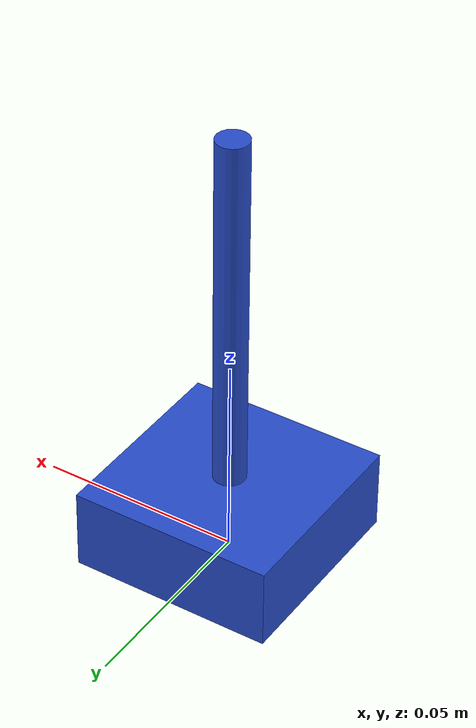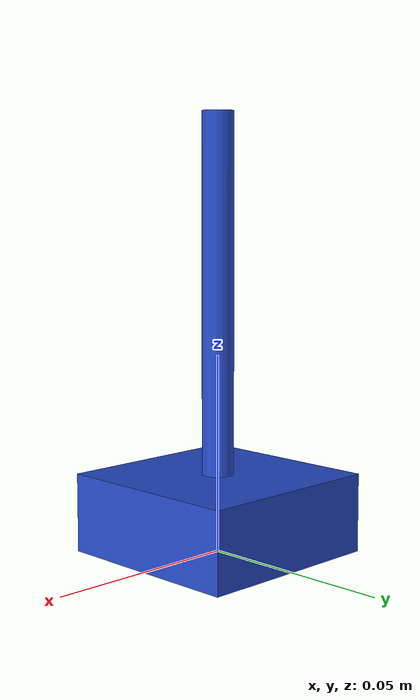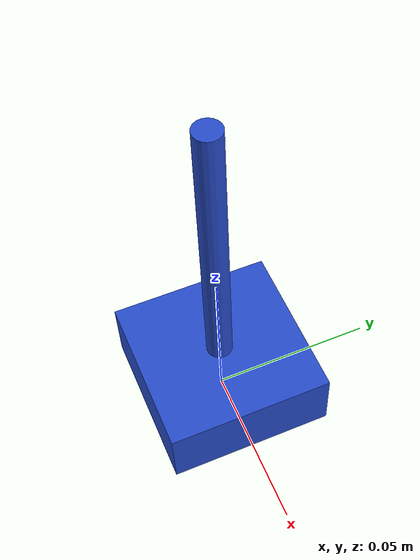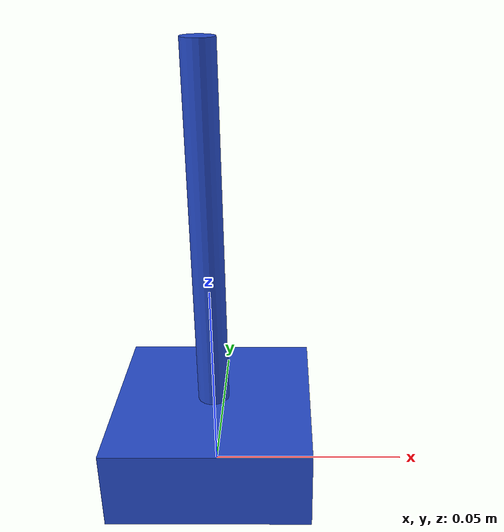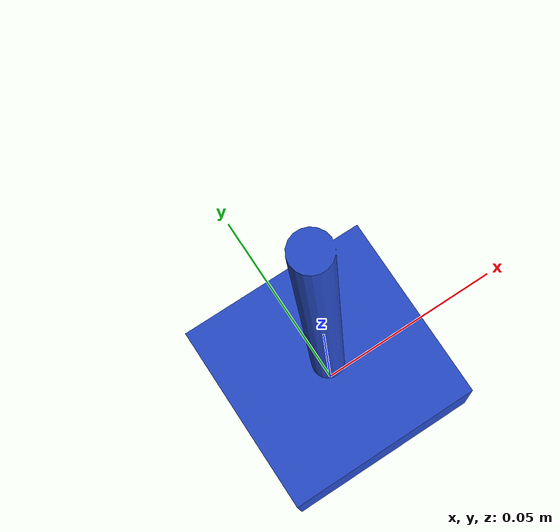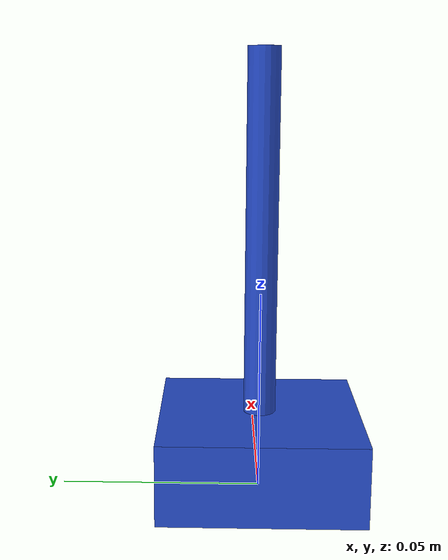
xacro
<?xml version="1.0"?>

<robot name="caja">

<!-- Constants -->
<property name="M_PI" value="3.14159"/>
<property name="M_SCALE" value="0.01"/>

<!-- Gazebo World link -->
<link name="world"/>
<joint name="fixed" type="fixed">
    <parent link="world"/>
    <child link="link_caja"/>
</joint>

<!-- Caja Link -->

<link name="link_caja">

    <visual>
        <origin rpy="0 0 0" xyz="0 0 0" />
        <geometry>
            <mesh filename="package://phantomx_pincher/meshes/caja.stl" scale="${M_SCALE} ${M_SCALE} ${M_SCALE}"/>
        </geometry>
    </visual>

    <inertial>
        <mass value="0.058" />
        <origin rpy="0 0 0" xyz="0 0 0.014563" />
        <inertia ixx="0.000029367" ixy="0" ixz="0" iyy="0.000029367" iyz="0" izz="0.000022122" />
    </inertial>

    <collision>
        <origin rpy="0 0 0" xyz="0 0 0" />
        <geometry>
            <mesh filename="package://phantomx_pincher/meshes/caja.stl" scale="${M_SCALE} ${M_SCALE} ${M_SCALE}"/>
        </geometry>
    </collision>

</link>

<!-- -|-|-|-|-|-|-|-|- GAZEBO PLUGIN -|-|-|-|-|-|-|-|- -->

<gazebo reference="link_caja">
    <material>Gazebo/Blue</material>
</gazebo>

</robot>
